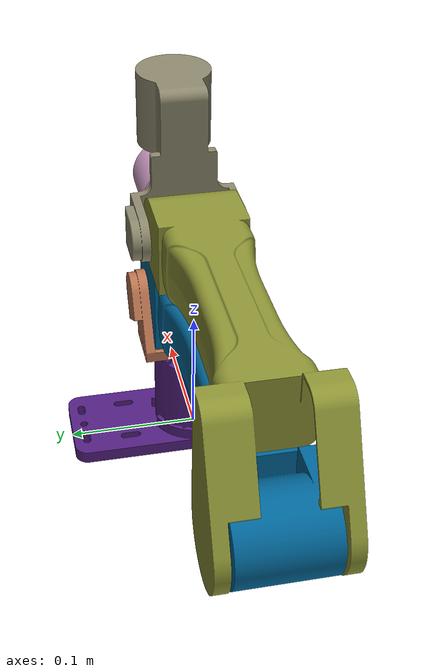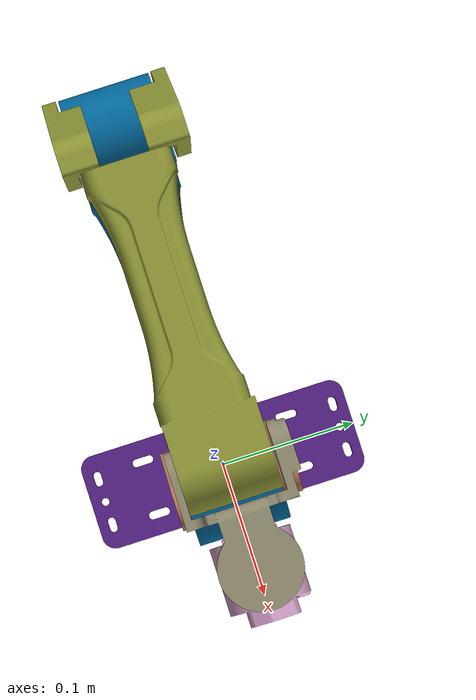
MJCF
<mujoco model="yam_ultra">
  <compiler angle="radian" meshdir="assets"/>

  <asset>
    <mesh name="base"  file="base.stl"/>
    <mesh name="link1" file="link1.stl"/>
    <mesh name="link2" file="link2.stl"/>
    <mesh name="link3" file="link3.stl"/>
    <mesh name="link4" file="link4.stl"/>
    <mesh name="link5" file="link5.stl"/>
  </asset>

  <worldbody>
    <body name="base" pos="0 0 0" quat="1 0 0 0">
      <inertial pos="-3.611e-05 2.26344e-05 0.0274792" quat="0.49954036332145396 0.50057947912270717 -0.49981383297991028 -0.5000657385342846" mass="0.940115" diaginertia="0.00081561760053630095 0.0016196011994023621 0.0018461202000613368"/>
      <geom pos="0.0374966 0.0464005 0.193801" quat="-7.3123010772031154e-14 -0.70710678118481629 -7.3123010771673112e-14 0.70710678118827863" type="mesh" rgba="0.317647 0.121569 0.498039 1" mesh="base"/>
      <body name="link1" pos="0 0 0.0733" quat="-7.3123010772031154e-14 -0.70710678118481629 -7.3123010771673112e-14 0.70710678118827863">
        <inertial pos="-0.0233636 -0.00172503 -0.00727828" quat="-0.6452436176973384 -0.21204348917963076 0.19681281961670494 0.70708057995669871" mass="0.101218" diaginertia="4.7181498384517786e-05 0.00010625072855078136 0.0001349130730647009"/>
        <joint name="joint1" pos="0 0 0" axis="-1 0 0" type="hinge" range="-2.61799 3.14159" actuatorfrcrange="-10 10"/>
        <geom pos="-0.119501 -0.0464 -0.0374968" quat="1 0 0 0" type="mesh" rgba="0.72549 0.45098 0.317647 1" mesh="link1"/>
        <body name="link2" pos="-0.0455 0.03285 -0.02" quat="1 -2.1066250000000002e-15 -1.804521180375e-29 4.9903099999999996e-15">
          <inertial pos="0.000134495 -0.0321253 0.129165" quat="-2.3381615529248389e-05 0.7071178193839055 -0.00013678541100874836 0.70709572919994479" mass="1.63122" diaginertia="0.00088839219885058791 0.01621030078414969 0.01628760001699971"/>
          <joint name="joint2" pos="0 0 0" axis="-3.58252e-15 -1 3.2007e-16" type="hinge" range="0 3.66519" actuatorfrcrange="-10 10"/>
          <geom pos="-0.0740001 -0.07925 -0.0174977" quat="1 0 0 0" type="mesh" rgba="0 0.4 0.6 1" mesh="link2"/>
          <body name="link3" pos="4.08431e-07 -0.0678 0.264" quat="1 -3.1000750000000002e-15 4.2795739409250002e-29 -2.53879e-15">
            <inertial pos="-0.0556042 0.0357986 -0.135083" quat="0.6673095083601458 -0.084819836562637627 0.73417432797379689 0.092150265989044328" mass="0.982553" diaginertia="0.00087644191886574482 0.0076296046064632606 0.0076519794746709975"/>
            <joint name="joint3" pos="0 0 0" axis="4.54273e-15 1 1.04275e-14" type="hinge" range="0 3.14159" actuatorfrcrange="-10 10"/>
            <geom pos="-0.0740003 -0.01145 -0.281499" quat="1 0 0 0" type="mesh" rgba="0.552941 0.580392 0.203922 1" mesh="link3"/>
            <body name="link4" pos="-0.0600003 0.0678 -0.244999" quat="1 5.21375e-15 -1.387780000001054e-17 -2.022025e-15">
              <inertial pos="-0.0548959 -0.0350242 -0.0575534" quat="0.10060722133102601 0.94108569945662934 -0.07975559657973047 0.31284970530350159" mass="0.462165" diaginertia="0.00028778996544839548 0.00076643008992378317 0.00078788794462782174"/>
              <joint name="joint4" pos="0 0 0" axis="0 1 0" type="hinge" range="-1.69297 1.5708" actuatorfrcrange="-10 10"/>
              <geom pos="-0.0138003 -0.0802502 -0.0364989" quat="1 0 0 0" type="mesh" rgba="0.545098 0.52549 0.419608 1" mesh="link4"/>
              <body name="link5" pos="-0.0403003 -0.0338507 -0.0703851" quat="1 -5.1092999999999996e-15 1.3877800000000156e-17 -3.0616149999999928e-17">
                <inertial pos="0.0375847 -3.55003e-05 -0.00717397" quat="0.64668614070190822 0.64239183561513957 0.28865586152813083 -0.29292927229031912" mass="0.403307" diaginertia="0.00016964735642963316 0.00019568620481229821 0.00021979443875806869"/>
                <joint name="joint5" pos="0 0 0" axis="1 0 0" type="hinge" range="-1.5708 1.5708" actuatorfrcrange="-10 10"/>
                <geom pos="0.0265 -0.0463995 0.0311519" quat="1 0 0 0" type="mesh" rgba="0.827451 0.623529 0.784314 1" mesh="link5"/>
                <body name="link6" pos="0.0404996 2.39858e-07 -0.0419481" quat="1 3.8111000000000064e-29 -2.6981499999999916e-29 2.212675e-15">
                  <inertial pos="0 0 0" mass="1e-6" diaginertia="1e-9 1e-9 1e-9"/>
                  <joint name="joint6" pos="0 0 0" axis="1.46014e-15 2.40808e-14 -1" type="hinge" range="-2.0944 2.0944" actuatorfrcrange="-10 10"/>
                </body>
              </body>
            </body>
          </body>
        </body>
      </body>
    </body>
  </worldbody>
</mujoco>
